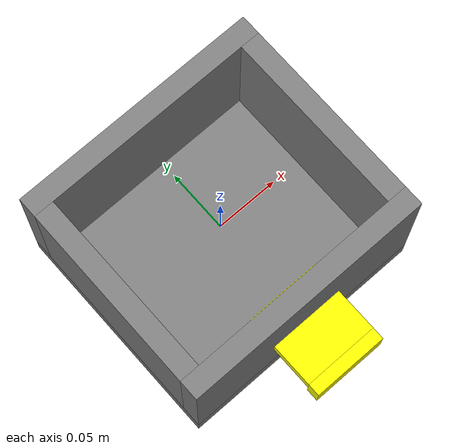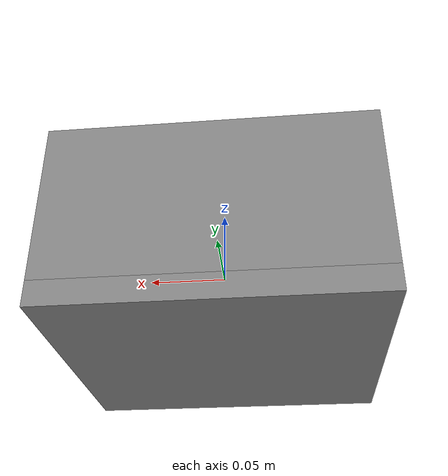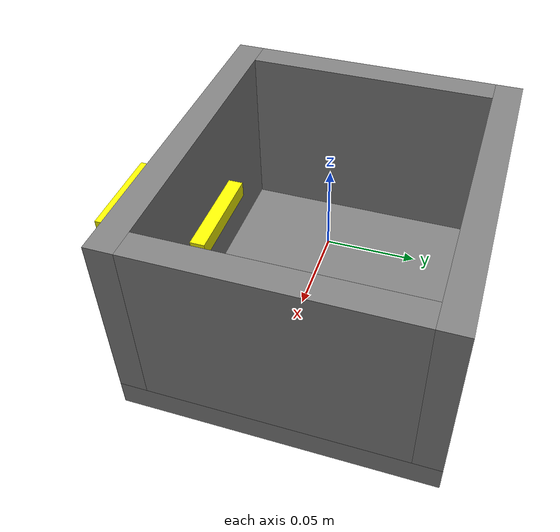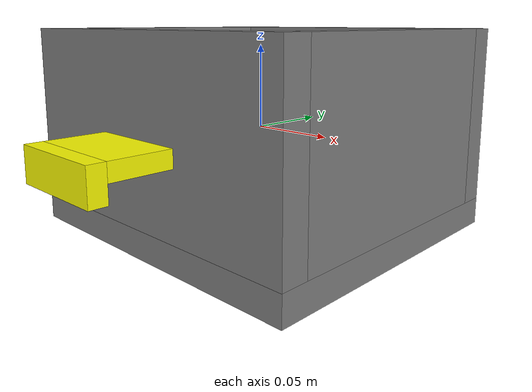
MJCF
<mujoco model="picked_box">
    <worldbody>
        <body name="picked_box" pos="0.0 0.0 0.0" quat="1 0 0 0">
            <geom name="picked_handle_short" pos="0 -0.13 -0.005" quat="1 0 0 0" rgba="1 1 0 1.0" size="0.03 0.005 0.01" friction="0.3 0.3 0.3" type="box" mass="0.01" priority="1"/>
            <geom name="picked_handle" pos="0 -0.095 0" quat="1 1 0 0" rgba="1 1 0 1.0" size="0.03 0.005 0.03" type="box" friction="0.3 0.3 0.3" mass="0.01" priority="1"/>
            <geom name="picked_box1" pos="0 -0.082 0.008" size="0.1 0.008 0.052" type="box" mass="0.02" />
            <geom name="picked_box2" pos="0 0.082 0.008" size="0.1 0.008 0.052" type="box" mass="0.02" />
            <geom name="picked_box3" pos="-0.092 0 0.008" size="0.008 0.074 0.052" type="box" mass="0.01" />
            <geom name="picked_box4" pos="0.092 0 0.008" size="0.008 0.074 0.052" type="box" mass="0.01" />
            <geom name="picked_box5" pos="0 0 -0.052" size="0.1 0.09 0.008" type="box" mass="0.04" />

            <joint name="picked_box_joint" type="free"/>

        </body>

    </worldbody>
</mujoco>
